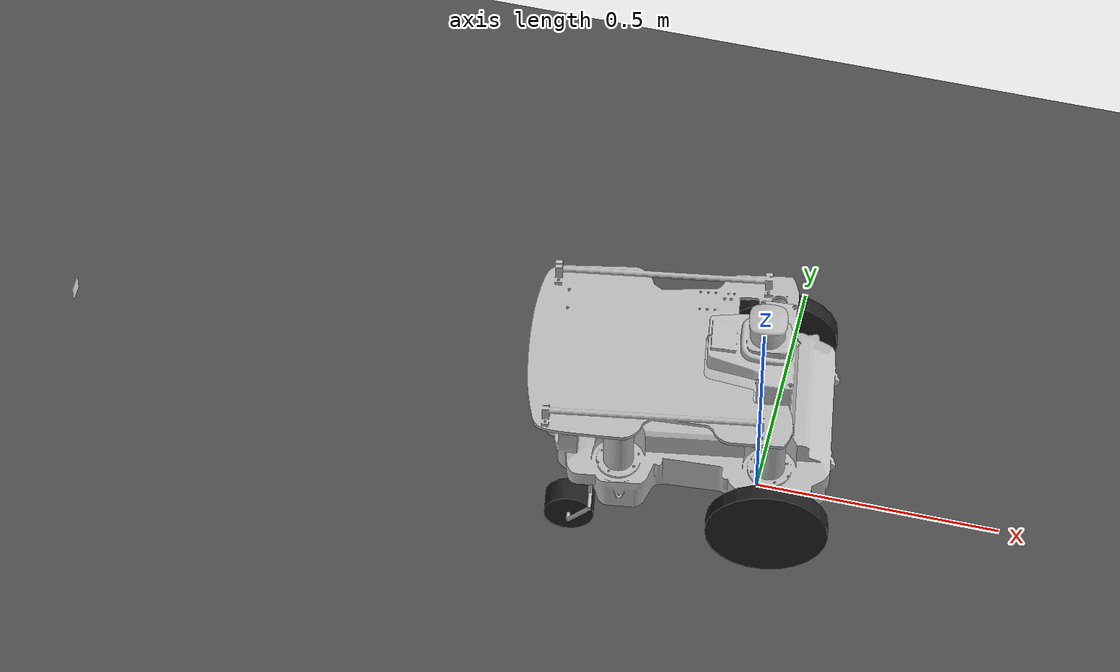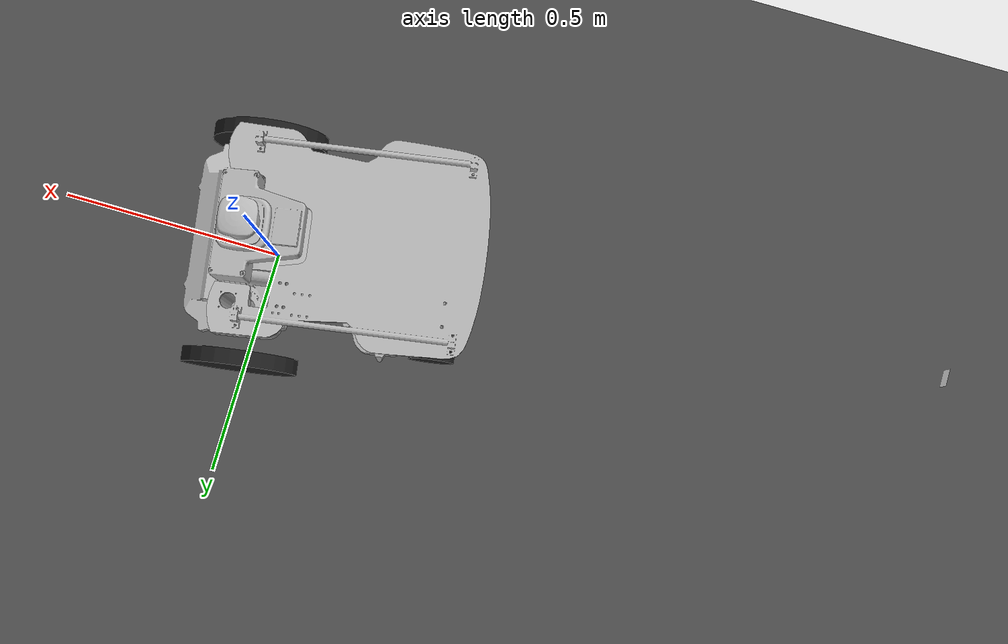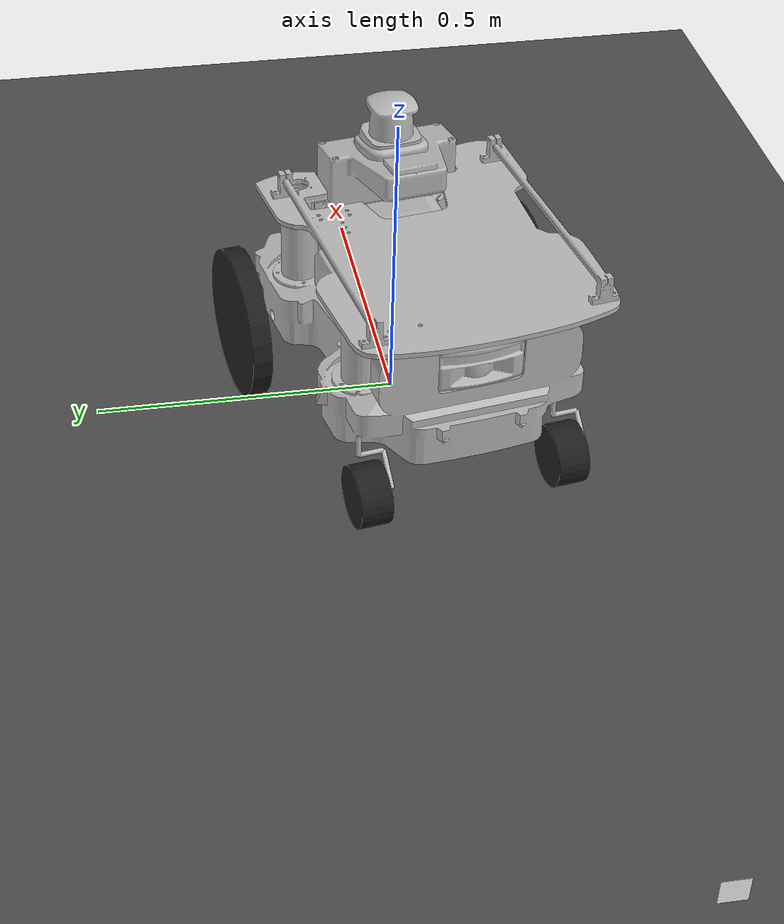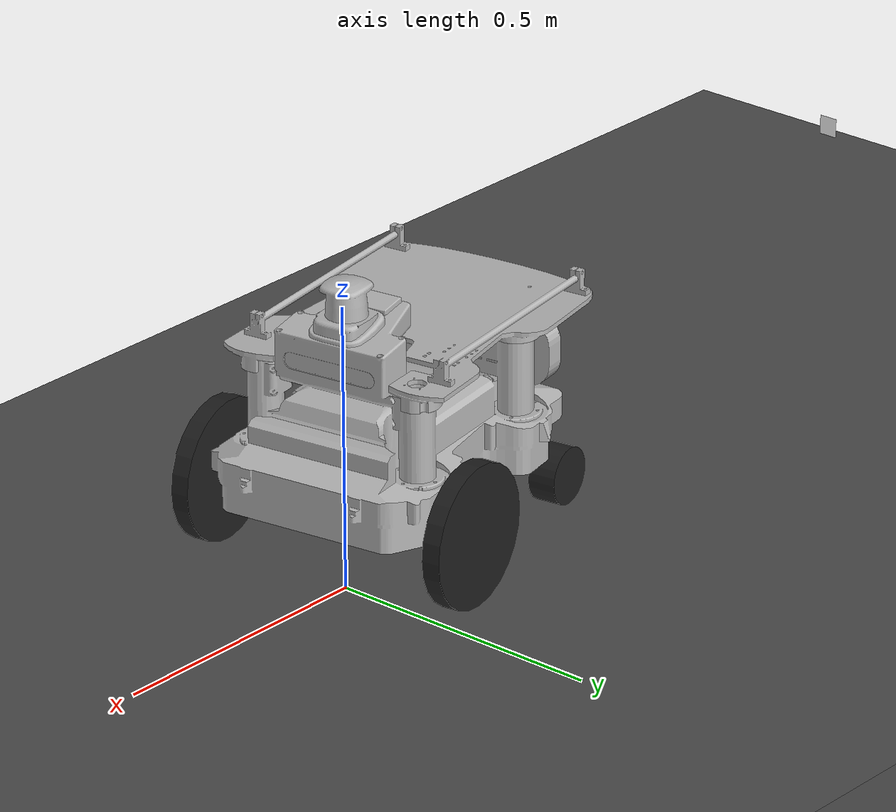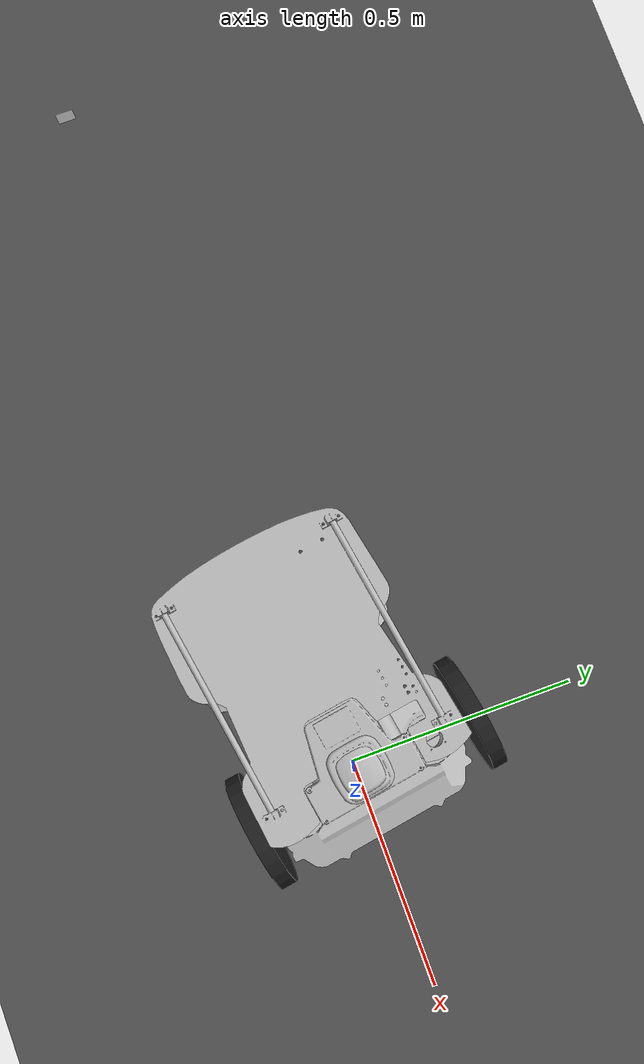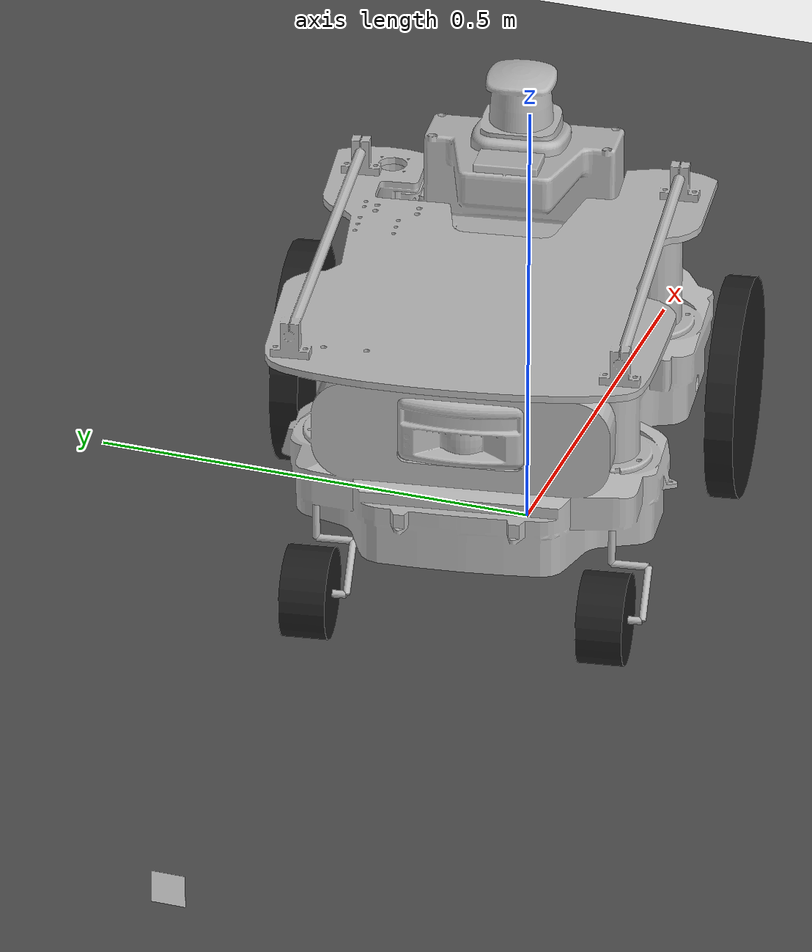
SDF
<sdf version="1.6">
 <world name="default">
  <light name="sun" type="directional">
   <pose>0 0 10 0 -0 0</pose>
   <diffuse>0.8 0.8 0.8 1</diffuse>
   <specular>0.2 0.2 0.2 1</specular>
   <attenuation>
    <range>1000</range>
    <constant>0.9</constant>
    <linear>0.01</linear>
    <quadratic>0.001</quadratic>
   </attenuation>
   <direction>-0.5 0.1 -0.9</direction>
  </light>
  <model name="ground_plane">
   <static>1</static>
   <link name="link">
    <collision name="collision">
     <geometry><plane><normal>0 0 1</normal><size>100 100</size></plane></geometry>
     <surface><friction><ode><mu>100</mu><mu2>50</mu2></ode></friction></surface>
    </collision>
    <visual name="visual">
     <cast_shadows>0</cast_shadows>
     <geometry><plane><normal>0 0 1</normal><size>100 100</size></plane></geometry>
     <material>
      <script><uri>file://media/materials/scripts/gazebo.material</uri><name>Gazebo/Grey</name></script>
     </material>
    </visual>
    <velocity_decay><linear>0</linear><angular>0</angular></velocity_decay>
   </link>
  </model>
  <physics name="default_physics" default="0" type="ode">
   <max_step_size>0.01</max_step_size>
   <real_time_factor>1</real_time_factor>
   <real_time_update_rate>100</real_time_update_rate>
  </physics>
  <scene><ambient>0.4 0.4 0.4 1</ambient><background>0.7 0.7 0.7 1</background><shadows>1</shadows></scene>
  <model name="asphalt_plane">
   <static>1</static>
   <link name="link">
    <collision name="collision"><geometry><box><size>20 20 0.1</size></box></geometry></collision>
    <visual name="visual">
     <cast_shadows>0</cast_shadows>
     <geometry><box><size>20 20 0.1</size></box></geometry>
     <material>
      <script>
       <uri>model://asphalt_plane/materials/scripts</uri>
       <uri>model://asphalt_plane/materials/textures</uri>
       <name>vrc/asphalt</name>
      </script>
     </material>
    </visual>
    <velocity_decay><linear>0</linear><angular>0</angular></velocity_decay>
   </link>
   <pose>0.076733 -0.110379 0 0 -0 0</pose>
  </model>
  <gravity>0 0 -9.8</gravity>
  <magnetic_field>6e-06 2.3e-05 -4.2e-05</magnetic_field>
  <atmosphere type="adiabatic"/>
  <spherical_coordinates>
   <surface_model>EARTH_WGS84</surface_model>
   <latitude_deg>0</latitude_deg>
   <longitude_deg>0</longitude_deg>
   <elevation>0</elevation>
   <heading_deg>0</heading_deg>
  </spherical_coordinates>
  <model name="automower">
   <link name="chassis_link">
    <inertial>
     <mass>14</mass>
     <inertia>
      <ixx>2</ixx>
      <ixy>-4.13248e-13</ixy>
      <ixz>6.19949e-13</ixz>
      <iyy>6</iyy>
      <iyz>-6.19949e-13</iyz>
      <izz>2</izz>
     </inertia>
    </inertial>
    <collision name="chassis_link_collision">
     <geometry>
      <mesh>
       <scale>1 1 1</scale>
       <uri>/home/unicorn/catkin_ws/src/UNICORN-2020/unicorn_description/meshes/chassis_link.STL</uri>
      </mesh>
     </geometry>
    </collision>
    <collision name="chassis_link_fixed_joint_lump__base_laser_collision_1">
     <pose>-0.0214 -0.0049 0.465 0 -0 0</pose>
     <geometry>
      <mesh>
       <scale>1 1 1</scale>
       <uri>/home/unicorn/catkin_ws/src/UNICORN-2020/unicorn_description/meshes/base_laser.STL</uri>
      </mesh>
     </geometry>
    </collision>
    <collision name="chassis_link_fixed_joint_lump__lift_link_collision_2">
     <geometry>
      <mesh>
       <scale>1 1 1</scale>
       <uri>/home/unicorn/catkin_ws/src/UNICORN-2020/unicorn_description/meshes/lift_link.STL</uri>
      </mesh>
     </geometry>
    </collision>
    <collision name="chassis_link_fixed_joint_lump__realsense_camera_collision_3">
     <pose>-0.4065 -0.03882 0.33658 0 -0 -3.14159</pose>
     <geometry>
      <mesh>
       <scale>1 1 1</scale>
       <uri>/home/unicorn/catkin_ws/src/UNICORN-2020/unicorn_description/meshes/real_sense.STL</uri>
      </mesh>
     </geometry>
    </collision>
    <collision name="chassis_link_fixed_joint_lump__rear_laser_collision_4">
     <pose>-0.42145 -0.00645 0.28652 0 -0 -3.14159</pose>
     <geometry>
      <mesh>
       <scale>1 1 1</scale>
       <uri>/home/unicorn/catkin_ws/src/UNICORN-2020/unicorn_description/meshes/rear_lidar.STL</uri>
      </mesh>
     </geometry>
    </collision>
    <collision name="chassis_link_fixed_joint_lump__zed_camera_collision_5">
     <pose>0.03112 -0.00552 0.36395 0 -0 0</pose>
     <geometry>
      <mesh>
       <scale>1 1 1</scale>
       <uri>/home/unicorn/catkin_ws/src/UNICORN-2020/unicorn_description/meshes/zed_link.STL</uri>
      </mesh>
     </geometry>
    </collision>
    <visual name="chassis_link_visual">
     <geometry>
      <mesh>
       <scale>1 1 1</scale>
       <uri>/home/unicorn/catkin_ws/src/UNICORN-2020/unicorn_description/meshes/chassis_link.STL</uri>
      </mesh>
     </geometry>
    </visual>
    <visual name="chassis_link_fixed_joint_lump__base_laser_visual_1">
     <pose>-0.0214 -0.0049 0.465 0 -0 0</pose>
     <geometry>
      <mesh>
       <scale>1 1 1</scale>
       <uri>/home/unicorn/catkin_ws/src/UNICORN-2020/unicorn_description/meshes/base_laser.STL</uri>
      </mesh>
     </geometry>
     <material><script><uri>__default__</uri><name>__default__</name></script></material>
    </visual>
    <visual name="chassis_link_fixed_joint_lump__lift_link_visual_2">
     <geometry>
      <mesh>
       <scale>1 1 1</scale>
       <uri>/home/unicorn/catkin_ws/src/UNICORN-2020/unicorn_description/meshes/lift_link.STL</uri>
      </mesh>
     </geometry>
    </visual>
    <visual name="chassis_link_fixed_joint_lump__realsense_camera_visual_3">
     <pose>-0.4065 -0.03882 0.33658 0 -0 -3.14159</pose>
     <geometry>
      <mesh>
       <scale>1 1 1</scale>
       <uri>/home/unicorn/catkin_ws/src/UNICORN-2020/unicorn_description/meshes/real_sense.STL</uri>
      </mesh>
     </geometry>
     <material><script><uri>__default__</uri><name>__default__</name></script></material>
    </visual>
    <visual name="chassis_link_fixed_joint_lump__rear_laser_visual_4">
     <pose>-0.42145 -0.00645 0.28652 0 -0 -3.14159</pose>
     <geometry>
      <mesh>
       <scale>1 1 1</scale>
       <uri>/home/unicorn/catkin_ws/src/UNICORN-2020/unicorn_description/meshes/rear_lidar.STL</uri>
      </mesh>
     </geometry>
     <material><script><uri>__default__</uri><name>__default__</name></script></material>
    </visual>
    <visual name="chassis_link_fixed_joint_lump__zed_camera_visual_5">
     <pose>0.03112 -0.00552 0.36395 0 -0 0</pose>
     <geometry>
      <mesh>
       <scale>1 1 1</scale>
       <uri>/home/unicorn/catkin_ws/src/UNICORN-2020/unicorn_description/meshes/zed_link.STL</uri>
      </mesh>
     </geometry>
     <material><script><uri>__default__</uri><name>__default__</name></script></material>
    </visual>
    <sensor name="base_laser" type="ray">
     <visualize>0</visualize>
     <update_rate>50</update_rate>
     <ray>
      <scan>
       <horizontal>
        <samples>800</samples>
        <resolution>1</resolution>
        <min_angle>-2.35619</min_angle>
        <max_angle>2.35619</max_angle>
       </horizontal>
       <vertical><samples>1</samples><min_angle>0</min_angle><max_angle>0</max_angle></vertical>
      </scan>
      <range><min>0.1</min><max>30</max><resolution>0.01</resolution></range>
      <noise><type>gaussian</type><mean>0</mean><stddev>0.001</stddev></noise>
     </ray>
     <plugin name="gazebo_ros_laser" filename="libgazebo_ros_laser.so">
      <topicName>frontLidar/scan</topicName>
      <frameName>base_laser</frameName>
      <robotNamespace>/</robotNamespace>
     </plugin>
     <pose>-0.0214 -0.0049 0.465 0 -0 0</pose>
    </sensor>
    <sensor name="openni_camera_camera" type="depth">
     <always_on>1</always_on>
     <visualize>1</visualize>
     <camera name="__default__">
      <horizontal_fov>1.39626</horizontal_fov>
      <image><width>640</width><height>480</height><format>R8G8B8</format></image>
      <clip><near>0.1</near><far>100</far></clip>
     </camera>
     <plugin name="camera_plugin" filename="libgazebo_ros_openni_kinect.so">
      <baseline>0.2</baseline>
      <alwaysOn>true</alwaysOn>
      <updateRate>0.0</updateRate>
      <cameraName>realsense</cameraName>
      <imageTopicName>/realsense/depth/image_raw</imageTopicName>
      <cameraInfoTopicName>/realsense/depth/camera_info</cameraInfoTopicName>
      <depthImageTopicName>/realsense/depth/image_raw</depthImageTopicName>
      <depthImageInfoTopicName>/realsense/depth/camera_info</depthImageInfoTopicName>
      <pointCloudTopicName>/realsense/depth/points</pointCloudTopicName>
      <frameName>realsense_depth_joint</frameName>
      <robotNamespace>/</robotNamespace>
      <pointCloudCutoff>0.05</pointCloudCutoff>
      <distortionK1>0</distortionK1>
      <distortionK2>0</distortionK2>
      <distortionK3>0</distortionK3>
      <distortionT1>0</distortionT1>
      <distortionT2>0</distortionT2>
      <CxPrime>0</CxPrime>
      <Cx>0</Cx>
      <Cy>0</Cy>
      <focalLength>0</focalLength>
      <hackBaseline>0</hackBaseline>
     </plugin>
     <pose>-0.4065 -0.03882 0.33658 0 -0 -3.14159</pose>
    </sensor>
    <sensor name="rear_laser" type="ray">
     <visualize>0</visualize>
     <update_rate>50</update_rate>
     <ray>
      <scan>
       <horizontal>
        <samples>11</samples>
        <resolution>1</resolution>
        <min_angle>-0.767945</min_angle>
        <max_angle>0.767945</max_angle>
       </horizontal>
       <vertical><samples>1</samples><min_angle>0</min_angle><max_angle>0</max_angle></vertical>
      </scan>
      <range><min>0.1</min><max>30</max><resolution>0.01</resolution></range>
      <noise><type>gaussian</type><mean>0</mean><stddev>0.001</stddev></noise>
     </ray>
     <plugin name="gazebo_ros_laser" filename="libgazebo_ros_laser.so">
      <topicName>rearLidar/scan</topicName>
      <frameName>rear_laser</frameName>
      <robotNamespace>/</robotNamespace>
     </plugin>
     <pose>-0.42145 -0.00645 0.28652 0 -0 -3.14159</pose>
    </sensor>
    <sensor name="openni_camera_camera" type="depth">
     <always_on>1</always_on>
     <visualize>1</visualize>
     <camera name="__default__">
      <horizontal_fov>1.39626</horizontal_fov>
      <image><width>640</width><height>480</height><format>R8G8B8</format></image>
      <clip><near>0.1</near><far>100</far></clip>
     </camera>
     <plugin name="camera_plugin" filename="libgazebo_ros_openni_kinect.so">
      <baseline>0.2</baseline>
      <alwaysOn>true</alwaysOn>
      <updateRate>0.0</updateRate>
      <cameraName>zed</cameraName>
      <imageTopicName>/zed/depth/image_raw</imageTopicName>
      <cameraInfoTopicName>/zed/depth/camera_info</cameraInfoTopicName>
      <depthImageTopicName>/zed/depth/image_raw</depthImageTopicName>
      <depthImageInfoTopicName>/zed/depth/camera_info</depthImageInfoTopicName>
      <pointCloudTopicName>/zed/depth/points</pointCloudTopicName>
      <frameName>zed_depth_joint</frameName>
      <robotNamespace>/</robotNamespace>
      <pointCloudCutoff>0.05</pointCloudCutoff>
      <distortionK1>0</distortionK1>
      <distortionK2>0</distortionK2>
      <distortionK3>0</distortionK3>
      <distortionT1>0</distortionT1>
      <distortionT2>0</distortionT2>
      <CxPrime>0</CxPrime>
      <Cx>0</Cx>
      <Cy>0</Cy>
      <focalLength>0</focalLength>
      <hackBaseline>0</hackBaseline>
     </plugin>
     <pose>0.03112 -0.00552 0.36395 0 -0 0</pose>
    </sensor>
   </link>
   <link name="back_left_wheel">
    <pose>0 -0.24 0.1225 0 -0 -3.14159</pose>
    <inertial>
     <mass>0.3</mass>
     <inertia>
      <ixx>0.00115107</ixx>
      <ixy>0</ixy>
      <ixz>0</ixz>
      <iyy>0.00115107</iyy>
      <iyz>0</iyz>
      <izz>0.00225094</izz>
     </inertia>
    </inertial>
    <collision name="back_left_wheel_collision">
     <pose>0 0 0 1.5708 -0 0</pose>
     <geometry><cylinder><length>0.032</length><radius>0.1225</radius></cylinder></geometry>
     <surface>
      <contact><ode><kp>100000</kp><kd>10000</kd></ode></contact>
      <friction><ode><mu>10000</mu><mu2>10000</mu2><fdir1>1 0 0</fdir1></ode></friction>
     </surface>
    </collision>
    <visual name="back_left_wheel_visual">
     <pose>0 0 0 1.5708 -0 0</pose>
     <geometry><cylinder><length>0.032</length><radius>0.1225</radius></cylinder></geometry>
     <material>
      <script><name>Gazebo/Black</name><uri>file://media/materials/scripts/gazebo.material</uri></script>
     </material>
    </visual>
    <velocity_decay><linear>0.5</linear><angular>0.5</angular></velocity_decay>
   </link>
   <joint name="back_left_wheel_joint" type="revolute">
    <child>back_left_wheel</child>
    <parent>chassis_link</parent>
    <axis>
     <xyz>0 -1 0</xyz>
     <limit><lower>-1e+16</lower><upper>1e+16</upper></limit>
     <dynamics><spring_reference>0</spring_reference><spring_stiffness>0</spring_stiffness></dynamics>
     <use_parent_model_frame>1</use_parent_model_frame>
    </axis>
   </joint>
   <link name="back_right_wheel">
    <pose>-0 0.24 0.1225 0 -0 -3.14159</pose>
    <inertial>
     <mass>0.3</mass>
     <inertia>
      <ixx>0.00115107</ixx>
      <ixy>0</ixy>
      <ixz>0</ixz>
      <iyy>0.00115107</iyy>
      <iyz>0</iyz>
      <izz>0.00225094</izz>
     </inertia>
    </inertial>
    <collision name="back_right_wheel_collision">
     <pose>0 0 0 1.5708 -0 0</pose>
     <geometry><cylinder><length>0.032</length><radius>0.1225</radius></cylinder></geometry>
     <surface>
      <contact><ode><kp>100000</kp><kd>10000</kd></ode></contact>
      <friction><ode><mu>10000</mu><mu2>10000</mu2><fdir1>1 0 0</fdir1></ode></friction>
     </surface>
    </collision>
    <visual name="back_right_wheel_visual">
     <pose>0 0 0 1.5708 -0 0</pose>
     <geometry><cylinder><length>0.032</length><radius>0.1225</radius></cylinder></geometry>
     <material>
      <script><name>Gazebo/Black</name><uri>file://media/materials/scripts/gazebo.material</uri></script>
     </material>
    </visual>
    <velocity_decay><linear>0.5</linear><angular>0.5</angular></velocity_decay>
   </link>
   <joint name="back_right_wheel_joint" type="revolute">
    <child>back_right_wheel</child>
    <parent>chassis_link</parent>
    <axis>
     <xyz>0 -1 0</xyz>
     <limit><lower>-1e+16</lower><upper>1e+16</upper></limit>
     <dynamics><spring_reference>0</spring_reference><spring_stiffness>0</spring_stiffness></dynamics>
     <use_parent_model_frame>1</use_parent_model_frame>
    </axis>
   </joint>
   <link name="sw_arm_left_1">
    <pose>-0.355 0.16 0.1531 0 -0 0</pose>
    <inertial>
     <pose>-0.010549 -0.02 -0.055662 0 -0 0</pose>
     <mass>0.04</mass>
     <inertia>
      <ixx>7.68002e-05</ixx>
      <ixy>-8.43877e-06</ixy>
      <ixz>-2.13078e-05</ixz>
      <iyy>7.30325e-05</iyy>
      <iyz>-2.05283e-05</iyz>
      <izz>3.37243e-05</izz>
     </inertia>
    </inertial>
    <visual name="sw_arm_left_1_visual">
     <pose>0 0 -0.03 0 -0 0</pose>
     <geometry><cylinder><length>0.06</length><radius>0.004</radius></cylinder></geometry>
    </visual>
    <visual name="sw_arm_left_1_fixed_joint_lump__sw_arm_left_2_visual_1">
     <pose>0 -0.02 -0.059998 1.5707 -0 0</pose>
     <geometry><cylinder><length>0.04</length><radius>0.004</radius></cylinder></geometry>
    </visual>
    <visual name="sw_arm_left_1_fixed_joint_lump__sw_arm_left_3_visual_2">
     <pose>-0.021098 -0.039999 -0.081324 -3.9e-05 0.78 -9.5e-05</pose>
     <geometry><cylinder><length>0.06</length><radius>0.004</radius></cylinder></geometry>
    </visual>
    <visual name="sw_arm_left_1_fixed_joint_lump__sw_arm_left_4_visual_3">
     <pose>-0.042197 -0.019998 -0.102653 1.57066 0.78 -9.5e-05</pose>
     <geometry><cylinder><length>0.04</length><radius>0.004</radius></cylinder></geometry>
    </visual>
   </link>
   <joint name="sw_arm_left_connect_1" type="revolute">
    <child>sw_arm_left_1</child>
    <parent>chassis_link</parent>
    <axis>
     <xyz>0 0 1</xyz>
     <limit><lower>-1e+16</lower><upper>1e+16</upper></limit>
     <dynamics><spring_reference>0</spring_reference><spring_stiffness>0</spring_stiffness></dynamics>
     <use_parent_model_frame>1</use_parent_model_frame>
    </axis>
   </joint>
   <link name="front_left_swivel_wheel">
    <pose>-0.397197 0.160002 0.050445 1.57066 0.78 -9.5e-05</pose>
    <inertial>
     <mass>0.3</mass>
     <inertia><ixx>0.00025</ixx><ixy>0</ixy><ixz>0</ixz><iyy>0.00025</iyy><iyz>0</iyz><izz>0.000375</izz></inertia>
    </inertial>
    <collision name="front_left_swivel_wheel_collision">
     <geometry><cylinder><length>0.05</length><radius>0.05</radius></cylinder></geometry>
     <surface>
      <contact><ode><kp>100000</kp><kd>1000</kd></ode></contact>
      <friction><ode><mu>0.8</mu><mu2>0.8</mu2><fdir1>1 0 0</fdir1></ode></friction>
     </surface>
    </collision>
    <visual name="front_left_swivel_wheel_visual">
     <geometry><cylinder><length>0.05</length><radius>0.05</radius></cylinder></geometry>
     <material>
      <script><name>Gazebo/Black</name><uri>file://media/materials/scripts/gazebo.material</uri></script>
     </material>
    </visual>
    <velocity_decay><linear>0.5</linear><angular>0.5</angular></velocity_decay>
   </link>
   <joint name="front_left_swivel_wheel_joint" type="revolute">
    <child>front_left_swivel_wheel</child>
    <parent>sw_arm_left_1</parent>
    <axis>
     <xyz>0 -1 9.6e-05</xyz>
     <limit><lower>-1e+16</lower><upper>1e+16</upper></limit>
     <dynamics><spring_reference>0</spring_reference><spring_stiffness>0</spring_stiffness></dynamics>
     <use_parent_model_frame>1</use_parent_model_frame>
    </axis>
   </joint>
   <link name="sw_arm_right_1">
    <pose>-0.355 -0.16 0.1531 0 -0 0</pose>
    <inertial>
     <pose>-0.010549 -0.02 -0.055662 0 -0 0</pose>
     <mass>0.04</mass>
     <inertia>
      <ixx>7.68002e-05</ixx>
      <ixy>-8.43877e-06</ixy>
      <ixz>-2.13078e-05</ixz>
      <iyy>7.30325e-05</iyy>
      <iyz>-2.05283e-05</iyz>
      <izz>3.37243e-05</izz>
     </inertia>
    </inertial>
    <visual name="sw_arm_right_1_visual">
     <pose>0 0 -0.03 0 -0 0</pose>
     <geometry><cylinder><length>0.06</length><radius>0.004</radius></cylinder></geometry>
    </visual>
    <visual name="sw_arm_right_1_fixed_joint_lump__sw_arm_right_2_visual_1">
     <pose>0 -0.02 -0.059998 1.5707 -0 0</pose>
     <geometry><cylinder><length>0.04</length><radius>0.004</radius></cylinder></geometry>
    </visual>
    <visual name="sw_arm_right_1_fixed_joint_lump__sw_arm_right_3_visual_2">
     <pose>-0.021098 -0.039999 -0.081324 -3.9e-05 0.78 -9.5e-05</pose>
     <geometry><cylinder><length>0.06</length><radius>0.004</radius></cylinder></geometry>
    </visual>
    <visual name="sw_arm_right_1_fixed_joint_lump__sw_arm_right_4_visual_3">
     <pose>-0.042197 -0.019998 -0.102653 1.57066 0.78 -9.5e-05</pose>
     <geometry><cylinder><length>0.04</length><radius>0.004</radius></cylinder></geometry>
    </visual>
   </link>
   <joint name="sw_arm_right_connect_1" type="revolute">
    <child>sw_arm_right_1</child>
    <parent>chassis_link</parent>
    <axis>
     <xyz>0 0 1</xyz>
     <limit><lower>-1e+16</lower><upper>1e+16</upper></limit>
     <dynamics><spring_reference>0</spring_reference><spring_stiffness>0</spring_stiffness></dynamics>
     <use_parent_model_frame>1</use_parent_model_frame>
    </axis>
   </joint>
   <link name="front_right_swivel_wheel">
    <pose>-0.397197 -0.159998 0.050445 1.57066 0.78 -9.5e-05</pose>
    <inertial>
     <mass>0.3</mass>
     <inertia><ixx>0.00025</ixx><ixy>0</ixy><ixz>0</ixz><iyy>0.00025</iyy><iyz>0</iyz><izz>0.000375</izz></inertia>
    </inertial>
    <collision name="front_right_swivel_wheel_collision">
     <geometry><cylinder><length>0.05</length><radius>0.05</radius></cylinder></geometry>
     <surface>
      <contact><ode><kp>100000</kp><kd>1000</kd></ode></contact>
      <friction><ode><mu>0.8</mu><mu2>0.8</mu2><fdir1>1 0 0</fdir1></ode></friction>
     </surface>
    </collision>
    <visual name="front_right_swivel_wheel_visual">
     <geometry><cylinder><length>0.05</length><radius>0.05</radius></cylinder></geometry>
     <material>
      <script><name>Gazebo/Black</name><uri>file://media/materials/scripts/gazebo.material</uri></script>
     </material>
    </visual>
    <velocity_decay><linear>0.5</linear><angular>0.5</angular></velocity_decay>
   </link>
   <joint name="front_right_swivel_wheel_joint" type="revolute">
    <child>front_right_swivel_wheel</child>
    <parent>sw_arm_right_1</parent>
    <axis>
     <xyz>0 -1 9.6e-05</xyz>
     <limit><lower>-1e+16</lower><upper>1e+16</upper></limit>
     <dynamics><spring_reference>0</spring_reference><spring_stiffness>0</spring_stiffness></dynamics>
     <use_parent_model_frame>1</use_parent_model_frame>
    </axis>
   </joint>
   <plugin name="novatel_gps_sim" filename="libhector_gazebo_ros_gps.so">
    <alwaysOn>true</alwaysOn>
    <updateRate>5</updateRate>
    <frameId>odom_chassis</frameId>
    <bodyName>chassis_link</bodyName>
    <topicName>gps</topicName>
    <velocityTopicName>gps_velocity</velocityTopicName>
    <drift>5.0 5.0 5.0</drift>
    <gaussianNoise>0.1 0.1 0.1</gaussianNoise>
    <velocityDrift>0 0 0</velocityDrift>
    <velocityGaussianNoise>0.1 0.1 0.1</velocityGaussianNoise>
    <robotNamespace>/</robotNamespace>
   </plugin>
   <static>0</static>
   <plugin name="automower_gazebo_controller" filename="libam_gazebo_controller_2wd.so">
    <alwaysOn>true</alwaysOn>
    <updateRate>100.0</updateRate>
    <leftJoint>back_right_wheel_joint</leftJoint>
    <rightJoint>back_left_wheel_joint</rightJoint>
    <wheelSeparation>0.4645</wheelSeparation>
    <wheelDiameter>0.245</wheelDiameter>
    <wheelTorque>100</wheelTorque>
    <commandTopic>cmd_vel</commandTopic>
    <odometryTopic>wheel_encoder/odom</odometryTopic>
    <odometryFrame>odom_chassis</odometryFrame>
    <robotBaseFrame>chassis_link</robotBaseFrame>
    <publishWheelTF>false</publishWheelTF>
    <publishOdomTF>false</publishOdomTF>
    <publishWheelJointState>false</publishWheelJointState>
    <gaussianNoise>0.1</gaussianNoise>
    <accelDrift>0.5 0.5 0.5</accelDrift>
    <accelGaussianNoise>0.35 0.35 0.3</accelGaussianNoise>
    <rateDrift>0.1 0.1 0.1</rateDrift>
    <rateGaussianNoise>0.05 0.05 0.015</rateGaussianNoise>
    <headingDrift>0.1</headingDrift>
    <headingGaussianNoise>1.00</headingGaussianNoise>
    <robotNamespace>/</robotNamespace>
   </plugin>
   <plugin name="gazebo_ros_control" filename="libgazebo_ros_control.so">
    <robotNamespace>/</robotNamespace>
   </plugin>
   <plugin name="imu_plugin" filename="libhector_gazebo_ros_imu.so">
    <alwaysOn>true</alwaysOn>
    <topicName>zed/imu</topicName>
    <serviceName>imu_service</serviceName>
    <updateRate>100.0</updateRate>
    <rpyOffsets>0 0 0</rpyOffsets>
    <gaussianNoise>0.1</gaussianNoise>
    <accelDrift>0.1 0.1 0.1</accelDrift>
    <accelGaussianNoise>0.35 0.35 0.3</accelGaussianNoise>
    <rateDrift>0.1 0.1 0.1</rateDrift>
    <rateGaussianNoise>0.05 0.05 0.015</rateGaussianNoise>
    <headingDrift>0.1</headingDrift>
    <headingGaussianNoise>1.00</headingGaussianNoise>
    <robotNamespace>/</robotNamespace>
    <bodyName>chassis_link</bodyName>
    <xyzOffset>-0.03112 0.00552 -0.36395</xyzOffset>
    <rpyOffset>0 -0 0</rpyOffset>
   </plugin>
   <plugin name="am_gazebo_wheelencoder" filename="libam_gazebo_wheelencoder.so">
    <robotNamespace>/</robotNamespace>
   </plugin>
   <pose>0.021505 0.019211 0.049659 0.000286 0.002984 0.157971</pose>
  </model>
  <model name="35mm_Apriltag36_11_00000_0">
   <link name="main">
    <inertial>
     <mass>1</mass>
     <inertia><ixx>1</ixx><ixy>0</ixy><ixz>0</ixz><iyy>1</iyy><iyz>0</iyz><izz>1</izz></inertia>
    </inertial>
    <visual name="main_Visual">
     <geometry><box><size>0.035 0.035 0.0001</size></box></geometry>
     <material>
      <script>
       <uri>model://Apriltag36_11_00000/materials/scripts</uri>
       <uri>model://Apriltag36_11_00000/materials/textures</uri>
       <name>Apriltag36_11_00000</name>
      </script>
      <ambient>1 1 1 1</ambient>
      <diffuse>1 1 1 1</diffuse>
      <specular>0 0 0 1</specular>
      <emissive>0 0 0 1</emissive>
      <shader type="vertex"><normal_map>__default__</normal_map></shader>
     </material>
    </visual>
   </link>
   <static>1</static>
   <pose>-1.3893 -0.093613 0.360107 3.14159 1.57079 3.14159</pose>
  </model>
 </world>
</sdf>
